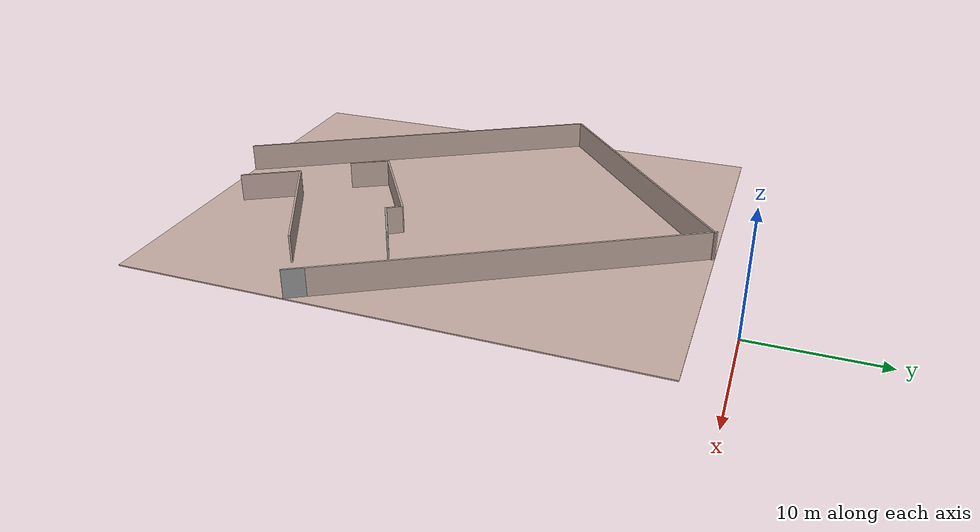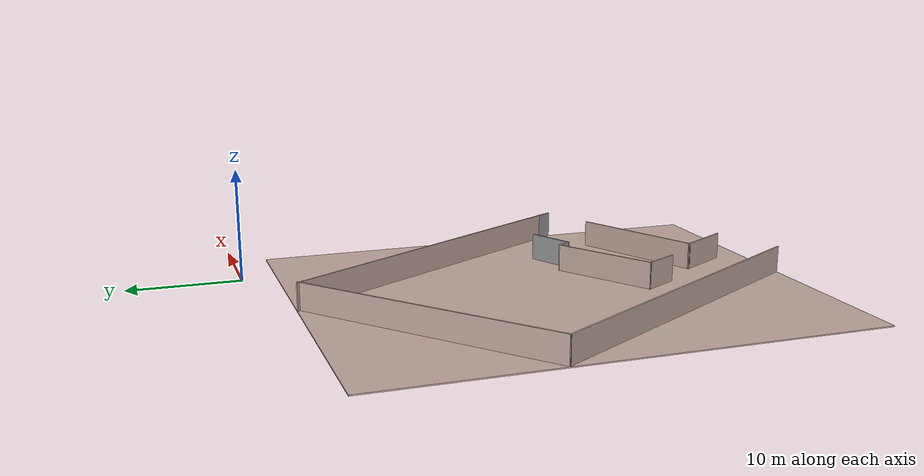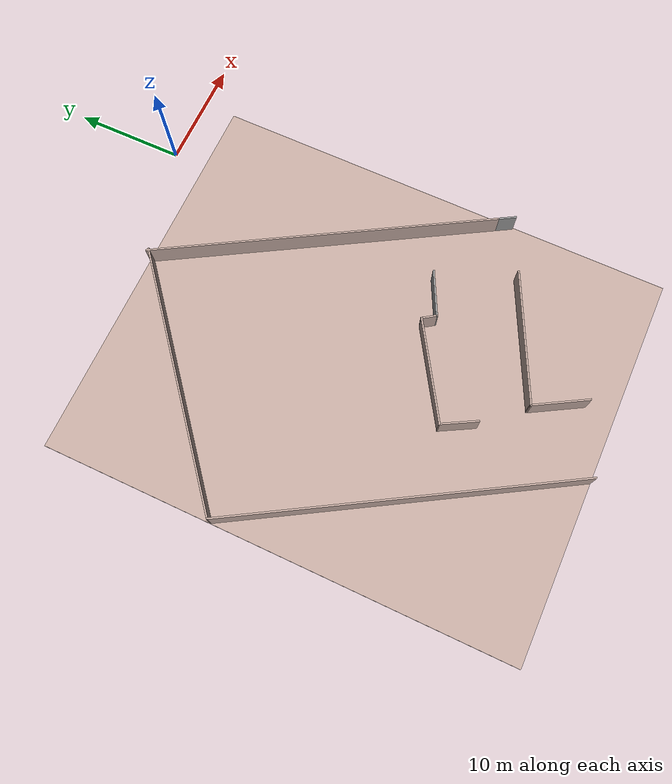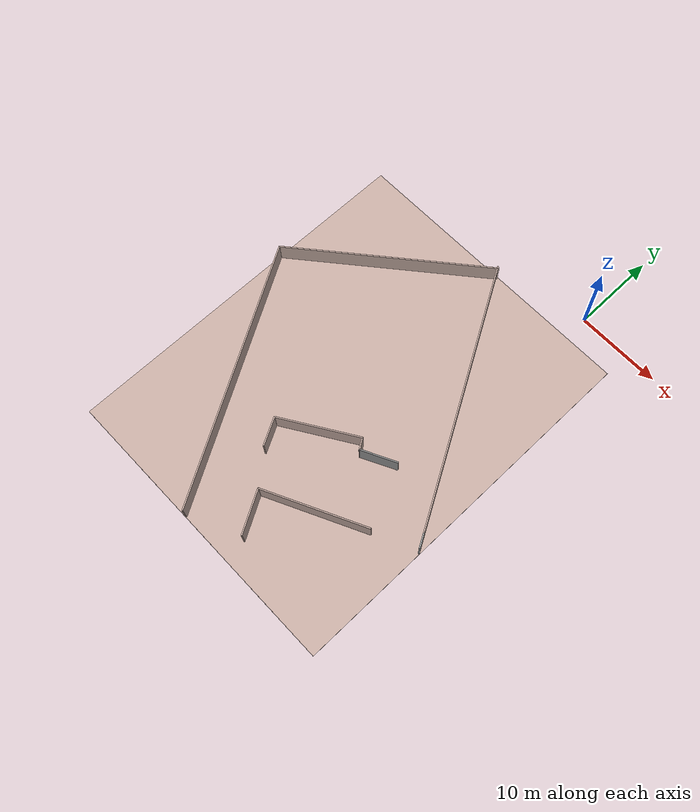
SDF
<?xml version='1.0'?>
<sdf version='1.6'>
  <model name='orkla_food'>
    <pose frame=''>-11.6972 -24.7884 0 0 -0 0</pose>
    <link name='Floor_1'>
      <collision name='Floor_1_Collision'>
        <geometry>
          <box>
            <size>35.6314 43.4373 0.1</size>
          </box>
        </geometry>
        <pose frame=''>0 0 0.05 0 -0 0</pose>
      </collision>
      <visual name='Floor_1_Visual'>
        <pose frame=''>0 0 0.05 0 -0 0</pose>
        <geometry>
          <box>
            <size>35.6314 43.4373 0.1</size>
          </box>
        </geometry>
        <material>
          <script>
            <uri>file://media/materials/scripts/gazebo.material</uri>
            <name>Gazebo/Grey</name>
          </script>
          <ambient>0.760784 0.662745 0.627451 1</ambient>
        </material>
        <meta>
          <layer>0</layer>
        </meta>
      </visual>
      <pose frame=''>0 1e-06 0 0 -0 0</pose>
    </link>
    <link name='Wall_38'>
      <collision name='Wall_38_Collision'>
        <geometry>
          <box>
            <size>31.7207 0.15 2.5</size>
          </box>
        </geometry>
        <pose frame=''>0 0 1.25 0 -0 0</pose>
      </collision>
      <visual name='Wall_38_Visual'>
        <pose frame=''>0 0 1.25 0 -0 0</pose>
        <geometry>
          <box>
            <size>31.7207 0.15 2.5</size>
          </box>
        </geometry>
        <material>
          <script>
            <uri>file://media/materials/scripts/gazebo.material</uri>
            <name>Gazebo/Grey</name>
          </script>
          <ambient>0.760784 0.662745 0.627451 1</ambient>
        </material>
        <meta>
          <layer>0</layer>
        </meta>
      </visual>
      <pose frame=''>9.00598 7.95406 0 0 -0 -1.04614</pose>
    </link>
    <link name='Wall_39'>
      <collision name='Wall_39_Collision'>
        <geometry>
          <box>
            <size>1.75 0.15 2.5</size>
          </box>
        </geometry>
        <pose frame=''>0 0 1.25 0 -0 0</pose>
      </collision>
      <visual name='Wall_39_Visual'>
        <pose frame=''>0 0 1.25 0 -0 0</pose>
        <geometry>
          <box>
            <size>1.75 0.15 2.5</size>
          </box>
        </geometry>
        <material>
          <script>
            <uri>file://media/materials/scripts/gazebo.material</uri>
            <name>Gazebo/Grey</name>
          </script>
          <ambient>1 1 1 1</ambient>
        </material>
        <meta>
          <layer>0</layer>
        </meta>
      </visual>
      <pose frame=''>17.3132 -6.40089 0 0 -0 -1.0472</pose>
    </link>
    <link name='Wall_40'>
      <collision name='Wall_40_Collision'>
        <geometry>
          <box>
            <size>12.3286 0.15 2.5</size>
          </box>
        </geometry>
        <pose frame=''>0 0 1.25 0 -0 0</pose>
      </collision>
      <visual name='Wall_40_Visual'>
        <pose frame=''>0 0 1.25 0 -0 0</pose>
        <geometry>
          <box>
            <size>12.3286 0.15 2.5</size>
          </box>
        </geometry>
        <material>
          <script>
            <uri>file://media/materials/scripts/gazebo.material</uri>
            <name>Gazebo/Grey</name>
          </script>
          <ambient>0.760784 0.662745 0.627451 1</ambient>
        </material>
        <meta>
          <layer>0</layer>
        </meta>
      </visual>
      <pose frame=''>7.41519 -11.9309 0 0 -0 -2.68825</pose>
    </link>
    <link name='Wall_41'>
      <collision name='Wall_41_Collision'>
        <geometry>
          <box>
            <size>5.22214 0.15 2.5</size>
          </box>
        </geometry>
        <pose frame=''>0 0 1.25 0 -0 0</pose>
      </collision>
      <visual name='Wall_41_Visual'>
        <pose frame=''>0 0 1.25 0 -0 0</pose>
        <geometry>
          <box>
            <size>5.22214 0.15 2.5</size>
          </box>
        </geometry>
        <material>
          <script>
            <uri>file://media/materials/scripts/gazebo.material</uri>
            <name>Gazebo/Grey</name>
          </script>
          <ambient>0.760784 0.662745 0.627451 1</ambient>
        </material>
        <meta>
          <layer>0</layer>
        </meta>
      </visual>
      <pose frame=''>3.20426 -16.7968 0 0 -0 -1.04936</pose>
    </link>
    <link name='Wall_42'>
      <collision name='Wall_42_Collision'>
        <geometry>
          <box>
            <size>31.9429 0.15 2.5</size>
          </box>
        </geometry>
        <pose frame=''>0 0 1.25 0 -0 0</pose>
      </collision>
      <visual name='Wall_42_Visual'>
        <pose frame=''>0 0 1.25 0 -0 0</pose>
        <geometry>
          <box>
            <size>31.9429 0.15 2.5</size>
          </box>
        </geometry>
        <material>
          <script>
            <uri>file://media/materials/scripts/gazebo.material</uri>
            <name>Gazebo/Grey</name>
          </script>
          <ambient>0.760784 0.662745 0.627451 1</ambient>
        </material>
        <meta>
          <layer>0</layer>
        </meta>
      </visual>
      <pose frame=''>-9.66247 -7.90711 0 0 -0 2.10162</pose>
    </link>
    <link name='Wall_43'>
      <collision name='Wall_43_Collision'>
        <geometry>
          <box>
            <size>24.8075 0.15 2.5</size>
          </box>
        </geometry>
        <pose frame=''>0 0 1.25 0 -0 0</pose>
      </collision>
      <visual name='Wall_43_Visual'>
        <pose frame=''>0 0 1.25 0 -0 0</pose>
        <geometry>
          <box>
            <size>24.8075 0.15 2.5</size>
          </box>
        </geometry>
        <material>
          <script>
            <uri>file://media/materials/scripts/gazebo.material</uri>
            <name>Gazebo/Grey</name>
          </script>
          <ambient>0.760784 0.662745 0.627451 1</ambient>
        </material>
        <meta>
          <layer>0</layer>
        </meta>
      </visual>
      <pose frame=''>-8.21204 13.6622 0 0 -0 0.691337</pose>
    </link>
    <link name='Wall_44'>
      <collision name='Wall_44_Collision'>
        <geometry>
          <box>
            <size>4.33486 0.15 2.5</size>
          </box>
        </geometry>
        <pose frame=''>0 0 1.25 0 -0 0</pose>
      </collision>
      <visual name='Wall_44_Visual'>
        <pose frame=''>0 0 1.25 0 -0 0</pose>
        <geometry>
          <box>
            <size>4.33486 0.15 2.5</size>
          </box>
        </geometry>
        <material>
          <script>
            <uri>file://media/materials/scripts/gazebo.material</uri>
            <name>Gazebo/Grey</name>
          </script>
          <ambient>1 1 1 1</ambient>
        </material>
        <meta>
          <layer>0</layer>
        </meta>
      </visual>
      <pose frame=''>7.92986 -3.36866 0 0 -0 -2.67794</pose>
    </link>
    <link name='Wall_45'>
      <collision name='Wall_45_Collision'>
        <geometry>
          <box>
            <size>1.49958 0.15 2.5</size>
          </box>
        </geometry>
        <pose frame=''>0 0 1.25 0 -0 0</pose>
      </collision>
      <visual name='Wall_45_Visual'>
        <pose frame=''>0 0 1.25 0 -0 0</pose>
        <geometry>
          <box>
            <size>1.49958 0.15 2.5</size>
          </box>
        </geometry>
        <material>
          <script>
            <uri>file://media/materials/scripts/gazebo.material</uri>
            <name>Gazebo/Grey</name>
          </script>
          <ambient>0.760784 0.662745 0.627451 1</ambient>
        </material>
        <meta>
          <layer>0</layer>
        </meta>
      </visual>
      <pose frame=''>5.68403 -3.74296 0 0 -0 2.1588</pose>
    </link>
    <link name='Wall_46'>
      <collision name='Wall_46_Collision'>
        <geometry>
          <box>
            <size>9.65248 0.15 2.5</size>
          </box>
        </geometry>
        <pose frame=''>0 0 1.25 0 -0 0</pose>
      </collision>
      <visual name='Wall_46_Visual'>
        <pose frame=''>0 0 1.25 0 -0 0</pose>
        <geometry>
          <box>
            <size>9.65248 0.15 2.5</size>
          </box>
        </geometry>
        <material>
          <script>
            <uri>file://media/materials/scripts/gazebo.material</uri>
            <name>Gazebo/Grey</name>
          </script>
          <ambient>0.760784 0.662745 0.627451 1</ambient>
        </material>
        <meta>
          <layer>0</layer>
        </meta>
      </visual>
      <pose frame=''>1.28594 -5.70806 0 0 -0 -2.58091</pose>
    </link>
    <link name='Wall_47'>
      <collision name='Wall_47_Collision'>
        <geometry>
          <box>
            <size>3.45842 0.15 2.5</size>
          </box>
        </geometry>
        <pose frame=''>0 0 1.25 0 -0 0</pose>
      </collision>
      <visual name='Wall_47_Visual'>
        <pose frame=''>0 0 1.25 0 -0 0</pose>
        <geometry>
          <box>
            <size>3.45842 0.15 2.5</size>
          </box>
        </geometry>
        <material>
          <script>
            <uri>file://media/materials/scripts/gazebo.material</uri>
            <name>Gazebo/Grey</name>
          </script>
          <ambient>0.760784 0.662745 0.627451 1</ambient>
        </material>
        <meta>
          <layer>0</layer>
        </meta>
      </visual>
      <pose frame=''>-1.94243 -9.68505 0 0 -0 -1.06919</pose>
    </link>
    <static>1</static>
  </model>
</sdf>
